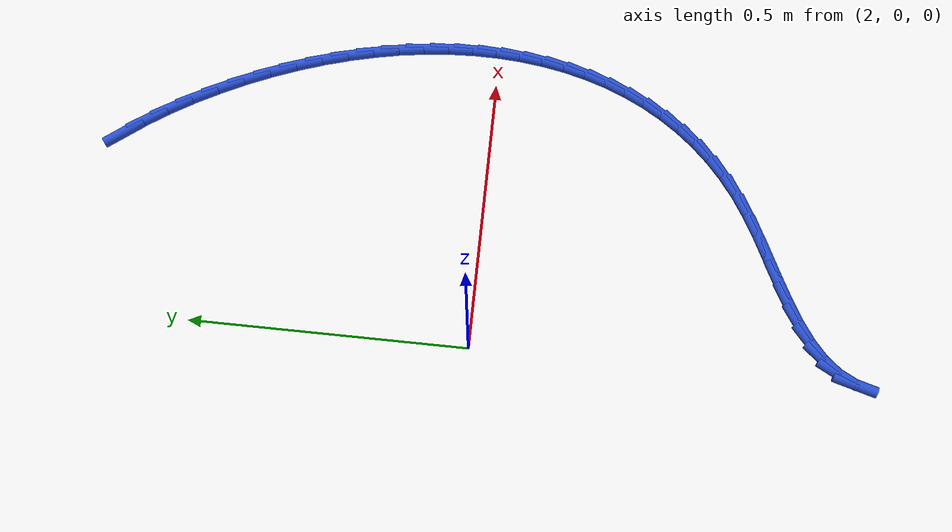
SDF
<sdf version="1.6">
 <world name="default">
  <model name="ground_plane">
   <static>1</static>
   <link name="link">
    <collision name="collision">
     <geometry><plane><normal>0 0 1</normal><size>100 100</size></plane></geometry>
     <surface><friction><ode><mu>100</mu><mu2>50</mu2></ode></friction></surface>
    </collision>
    <visual name="visual">
     <cast_shadows>0</cast_shadows>
     <geometry><plane><normal>0 0 1</normal><size>100 100</size></plane></geometry>
     <material>
      <script><uri>file://media/materials/scripts/gazebo.material</uri><name>Gazebo/WhiteGlow</name></script>
     </material>
    </visual>
   </link>
  </model>
  <model name="line">
   <link name="link_96">
    <pose>2.3361425243987157 0.670940411305497 0.01 0 1.57 -0.9211619495885262</pose>
    <collision name="collision">
     <geometry><cylinder><radius>0.01</radius><length>0.08</length></cylinder></geometry>
    </collision>
    <visual name="visual">
     <material>
      <script><name>Gazebo/Blue</name><uri>file://media/materials/scripts/gazebo.material</uri></script>
     </material>
     <geometry><cylinder><radius>0.01</radius><length>0.08</length></cylinder></geometry>
    </visual>
   </link>
   <link name="link_97">
    <pose>2.3655294639265647 0.6322544314807376 0.01 0 1.57 -0.979559157148753</pose>
    <collision name="collision">
     <geometry><cylinder><radius>0.01</radius><length>0.08</length></cylinder></geometry>
    </collision>
    <visual name="visual">
     <material>
      <script><name>Gazebo/Blue</name><uri>file://media/materials/scripts/gazebo.material</uri></script>
     </material>
     <geometry><cylinder><radius>0.01</radius><length>0.08</length></cylinder></geometry>
    </visual>
   </link>
   <link name="link_98">
    <pose>2.3932420598584727 0.5909754561784096 0.01 0 1.57 -1.0311458604146049</pose>
    <collision name="collision">
     <geometry><cylinder><radius>0.01</radius><length>0.08</length></cylinder></geometry>
    </collision>
    <visual name="visual">
     <material>
      <script><name>Gazebo/Blue</name><uri>file://media/materials/scripts/gazebo.material</uri></script>
     </material>
     <geometry><cylinder><radius>0.01</radius><length>0.08</length></cylinder></geometry>
    </visual>
   </link>
   <link name="link_99">
    <pose>2.4191576964260895 0.5477073408028895 0.01 0 1.57 -1.0776900004608259</pose>
    <collision name="collision">
     <geometry><cylinder><radius>0.01</radius><length>0.08</length></cylinder></geometry>
    </collision>
    <visual name="visual">
     <material>
      <script><name>Gazebo/Blue</name><uri>file://media/materials/scripts/gazebo.material</uri></script>
     </material>
     <geometry><cylinder><radius>0.01</radius><length>0.08</length></cylinder></geometry>
    </visual>
   </link>
   <link name="link_100">
    <pose>2.443153757861064 0.5030539407585554 0.01 0 1.57 -1.1207012633661388</pose>
    <collision name="collision">
     <geometry><cylinder><radius>0.01</radius><length>0.08</length></cylinder></geometry>
    </collision>
    <visual name="visual">
     <material>
      <script><name>Gazebo/Blue</name><uri>file://media/materials/scripts/gazebo.material</uri></script>
     </material>
     <geometry><cylinder><radius>0.01</radius><length>0.08</length></cylinder></geometry>
    </visual>
   </link>
   <link name="link_101">
    <pose>2.4651083271218623 0.4576155567696656 0.01 0 1.57 -1.162315428003696</pose>
    <collision name="collision">
     <geometry><cylinder><radius>0.01</radius><length>0.08</length></cylinder></geometry>
    </collision>
    <visual name="visual">
     <material>
      <script><name>Gazebo/Blue</name><uri>file://media/materials/scripts/gazebo.material</uri></script>
     </material>
     <geometry><cylinder><radius>0.01</radius><length>0.08</length></cylinder></geometry>
    </visual>
   </link>
   <link name="link_102">
    <pose>2.484936340176211 0.41180500475739107 0.01 0 1.57 -1.2043689217303548</pose>
    <collision name="collision">
     <geometry><cylinder><radius>0.01</radius><length>0.08</length></cylinder></geometry>
    </collision>
    <visual name="visual">
     <material>
      <script><name>Gazebo/Blue</name><uri>file://media/materials/scripts/gazebo.material</uri></script>
     </material>
     <geometry><cylinder><radius>0.01</radius><length>0.08</length></cylinder></geometry>
    </visual>
   </link>
   <link name="link_103">
    <pose>2.5026071159717476 0.3657584344361468 0.01 0 1.57 -1.2471430448267442</pose>
    <collision name="collision">
     <geometry><cylinder><radius>0.01</radius><length>0.08</length></cylinder></geometry>
    </collision>
    <visual name="visual">
     <material>
      <script><name>Gazebo/Blue</name><uri>file://media/materials/scripts/gazebo.material</uri></script>
     </material>
     <geometry><cylinder><radius>0.01</radius><length>0.08</length></cylinder></geometry>
    </visual>
   </link>
   <link name="link_104">
    <pose>2.5180943454410354 0.3195897536261521 0.01 0 1.57 -1.2908160991901476</pose>
    <collision name="collision">
     <geometry><cylinder><radius>0.01</radius><length>0.08</length></cylinder></geometry>
    </collision>
    <visual name="visual">
     <material>
      <script><name>Gazebo/Blue</name><uri>file://media/materials/scripts/gazebo.material</uri></script>
     </material>
     <geometry><cylinder><radius>0.01</radius><length>0.08</length></cylinder></geometry>
    </visual>
   </link>
   <link name="link_105">
    <pose>2.531371719516638 0.27341287014762417 0.01 0 1.57 -1.335577143184919</pose>
    <collision name="collision">
     <geometry><cylinder><radius>0.01</radius><length>0.08</length></cylinder></geometry>
    </collision>
    <visual name="visual">
     <material>
      <script><name>Gazebo/Blue</name><uri>file://media/materials/scripts/gazebo.material</uri></script>
     </material>
     <geometry><cylinder><radius>0.01</radius><length>0.08</length></cylinder></geometry>
    </visual>
   </link>
   <link name="link_106">
    <pose>2.542412929131118 0.22734169182078243 0.01 0 1.57 -1.3816257251251525</pose>
    <collision name="collision">
     <geometry><cylinder><radius>0.01</radius><length>0.08</length></cylinder></geometry>
    </collision>
    <visual name="visual">
     <material>
      <script><name>Gazebo/Blue</name><uri>file://media/materials/scripts/gazebo.material</uri></script>
     </material>
     <geometry><cylinder><radius>0.01</radius><length>0.08</length></cylinder></geometry>
    </visual>
   </link>
   <link name="link_107">
    <pose>2.5511916652170386 0.18149012646584428 0.01 0 1.57 -1.4291710830490594</pose>
    <collision name="collision">
     <geometry><cylinder><radius>0.01</radius><length>0.08</length></cylinder></geometry>
    </collision>
    <visual name="visual">
     <material>
      <script><name>Gazebo/Blue</name><uri>file://media/materials/scripts/gazebo.material</uri></script>
     </material>
     <geometry><cylinder><radius>0.01</radius><length>0.08</length></cylinder></geometry>
    </visual>
   </link>
   <link name="link_108">
    <pose>2.557681618706964 0.1359720819030276 0.01 0 1.57 -1.4784305479637547</pose>
    <collision name="collision">
     <geometry><cylinder><radius>0.01</radius><length>0.08</length></cylinder></geometry>
    </collision>
    <visual name="visual">
     <material>
      <script><name>Gazebo/Blue</name><uri>file://media/materials/scripts/gazebo.material</uri></script>
     </material>
     <geometry><cylinder><radius>0.01</radius><length>0.08</length></cylinder></geometry>
    </visual>
   </link>
   <link name="link_109">
    <pose>2.5618564805334563 0.09090146595255165 0.01 0 1.57 -1.529626819297249</pose>
    <collision name="collision">
     <geometry><cylinder><radius>0.01</radius><length>0.08</length></cylinder></geometry>
    </collision>
    <visual name="visual">
     <material>
      <script><name>Gazebo/Blue</name><uri>file://media/materials/scripts/gazebo.material</uri></script>
     </material>
     <geometry><cylinder><radius>0.01</radius><length>0.08</length></cylinder></geometry>
    </visual>
   </link>
   <link name="link_110">
    <pose>2.563689941629079 0.04639218643463344 0.01 0 1.57 1.558608942080746</pose>
    <collision name="collision">
     <geometry><cylinder><radius>0.01</radius><length>0.08</length></cylinder></geometry>
    </collision>
    <visual name="visual">
     <material>
      <script><name>Gazebo/Blue</name><uri>file://media/materials/scripts/gazebo.material</uri></script>
     </material>
     <geometry><cylinder><radius>0.01</radius><length>0.08</length></cylinder></geometry>
    </visual>
   </link>
   <link name="link_111">
    <pose>2.563155692926396 0.002558151169492543 0.01 0 1.57 1.5028727394270192</pose>
    <collision name="collision">
     <geometry><cylinder><radius>0.01</radius><length>0.08</length></cylinder></geometry>
    </collision>
    <visual name="visual">
     <material>
      <script><name>Gazebo/Blue</name><uri>file://media/materials/scripts/gazebo.material</uri></script>
     </material>
     <geometry><cylinder><radius>0.01</radius><length>0.08</length></cylinder></geometry>
    </visual>
   </link>
   <link name="link_112">
    <pose>2.560227425357969 -0.040486732022654126 0.01 0 1.57 1.444552363742111</pose>
    <collision name="collision">
     <geometry><cylinder><radius>0.01</radius><length>0.08</length></cylinder></geometry>
    </collision>
    <visual name="visual">
     <material>
      <script><name>Gazebo/Blue</name><uri>file://media/materials/scripts/gazebo.material</uri></script>
     </material>
     <geometry><cylinder><radius>0.01</radius><length>0.08</length></cylinder></geometry>
    </visual>
   </link>
   <link name="link_113">
    <pose>2.5548788298563636 -0.08262855532158717 0.01 0 1.57 1.383468358586358</pose>
    <collision name="collision">
     <geometry><cylinder><radius>0.01</radius><length>0.08</length></cylinder></geometry>
    </collision>
    <visual name="visual">
     <material>
      <script><name>Gazebo/Blue</name><uri>file://media/materials/scripts/gazebo.material</uri></script>
     </material>
     <geometry><cylinder><radius>0.01</radius><length>0.08</length></cylinder></geometry>
    </visual>
   </link>
   <link name="link_114">
    <pose>2.5470835973541415 -0.12375341090708938 0.01 0 1.57 1.3194813512771422</pose>
    <collision name="collision">
     <geometry><cylinder><radius>0.01</radius><length>0.08</length></cylinder></geometry>
    </collision>
    <visual name="visual">
     <material>
      <script><name>Gazebo/Blue</name><uri>file://media/materials/scripts/gazebo.material</uri></script>
     </material>
     <geometry><cylinder><radius>0.01</radius><length>0.08</length></cylinder></geometry>
    </visual>
   </link>
   <link name="link_115">
    <pose>2.5368154187838665 -0.16374739095894164 0.01 0 1.57 1.2525096619528135</pose>
    <collision name="collision">
     <geometry><cylinder><radius>0.01</radius><length>0.08</length></cylinder></geometry>
    </collision>
    <visual name="visual">
     <material>
      <script><name>Gazebo/Blue</name><uri>file://media/materials/scripts/gazebo.material</uri></script>
     </material>
     <geometry><cylinder><radius>0.01</radius><length>0.08</length></cylinder></geometry>
    </visual>
   </link>
   <link name="link_116">
    <pose>2.5240479850781004 -0.20249658765692607 0.01 0 1.57 1.1825490455274297</pose>
    <collision name="collision">
     <geometry><cylinder><radius>0.01</radius><length>0.08</length></cylinder></geometry>
    </collision>
    <visual name="visual">
     <material>
      <script><name>Gazebo/Blue</name><uri>file://media/materials/scripts/gazebo.material</uri></script>
     </material>
     <geometry><cylinder><radius>0.01</radius><length>0.08</length></cylinder></geometry>
    </visual>
   </link>
   <link name="link_117">
    <pose>2.508754987169408 -0.23988709318082557 0.01 0 1.57 1.1096928964110275</pose>
    <collision name="collision">
     <geometry><cylinder><radius>0.01</radius><length>0.08</length></cylinder></geometry>
    </collision>
    <visual name="visual">
     <material>
      <script><name>Gazebo/Blue</name><uri>file://media/materials/scripts/gazebo.material</uri></script>
     </material>
     <geometry><cylinder><radius>0.01</radius><length>0.08</length></cylinder></geometry>
    </visual>
   </link>
   <link name="link_118">
    <pose>2.490910115990352 -0.27580499971041983 0.01 0 1.57 1.0341502429264238</pose>
    <collision name="collision">
     <geometry><cylinder><radius>0.01</radius><length>0.08</length></cylinder></geometry>
    </collision>
    <visual name="visual">
     <material>
      <script><name>Gazebo/Blue</name><uri>file://media/materials/scripts/gazebo.material</uri></script>
     </material>
     <geometry><cylinder><radius>0.01</radius><length>0.08</length></cylinder></geometry>
    </visual>
   </link>
   <link name="link_119">
    <pose>2.470487062473496 -0.3101363994254918 0.01 0 1.57 0.9562579839576453</pose>
    <collision name="collision">
     <geometry><cylinder><radius>0.01</radius><length>0.08</length></cylinder></geometry>
    </collision>
    <visual name="visual">
     <material>
      <script><name>Gazebo/Blue</name><uri>file://media/materials/scripts/gazebo.material</uri></script>
     </material>
     <geometry><cylinder><radius>0.01</radius><length>0.08</length></cylinder></geometry>
    </visual>
   </link>
   <link name="link_120">
    <pose>2.4474595175514025 -0.3427673845058231 0.01 0 1.57 0.8764834793342126</pose>
    <collision name="collision">
     <geometry><cylinder><radius>0.01</radius><length>0.08</length></cylinder></geometry>
    </collision>
    <visual name="visual">
     <material>
      <script><name>Gazebo/Blue</name><uri>file://media/materials/scripts/gazebo.material</uri></script>
     </material>
     <geometry><cylinder><radius>0.01</radius><length>0.08</length></cylinder></geometry>
    </visual>
   </link>
   <link name="link_121">
    <pose>2.4218011721566355 -0.37358404713119564 0.01 0 1.57 0.7954142354109576</pose>
    <collision name="collision">
     <geometry><cylinder><radius>0.01</radius><length>0.08</length></cylinder></geometry>
    </collision>
    <visual name="visual">
     <material>
      <script><name>Gazebo/Blue</name><uri>file://media/materials/scripts/gazebo.material</uri></script>
     </material>
     <geometry><cylinder><radius>0.01</radius><length>0.08</length></cylinder></geometry>
    </visual>
   </link>
   <link name="link_122">
    <pose>2.3934857172217567 -0.4024724794813917 0.01 0 1.57 0.7137332691230394</pose>
    <collision name="collision">
     <geometry><cylinder><radius>0.01</radius><length>0.08</length></cylinder></geometry>
    </collision>
    <visual name="visual">
     <material>
      <script><name>Gazebo/Blue</name><uri>file://media/materials/scripts/gazebo.material</uri></script>
     </material>
     <geometry><cylinder><radius>0.01</radius><length>0.08</length></cylinder></geometry>
    </visual>
   </link>
   <link name="link_123">
    <pose>2.3624868436793323 -0.42931877373619187 0.01 0 1.57 0.632181573141038</pose>
    <collision name="collision">
     <geometry><cylinder><radius>0.01</radius><length>0.08</length></cylinder></geometry>
    </collision>
    <visual name="visual">
     <material>
      <script><name>Gazebo/Blue</name><uri>file://media/materials/scripts/gazebo.material</uri></script>
     </material>
     <geometry><cylinder><radius>0.01</radius><length>0.08</length></cylinder></geometry>
    </visual>
   </link>
   <link name="link_124">
    <pose>2.3287782424619223 -0.45400902207537824 0.01 0 1.57 0.5530252072908484</pose>
    <collision name="collision">
     <geometry><cylinder><radius>0.01</radius><length>0.08</length></cylinder></geometry>
    </collision>
    <visual name="visual">
     <material>
      <script><name>Gazebo/Blue</name><uri>file://media/materials/scripts/gazebo.material</uri></script>
     </material>
     <geometry><cylinder><radius>0.01</radius><length>0.08</length></cylinder></geometry>
    </visual>
   </link>
   <link name="link_125">
    <pose>2.292390389931441 -0.4764703460197853 0.01 0 1.57 0.49276225390242195</pose>
    <collision name="collision">
     <geometry><cylinder><radius>0.01</radius><length>0.08</length></cylinder></geometry>
    </collision>
    <visual name="visual">
     <material>
      <script><name>Gazebo/Blue</name><uri>file://media/materials/scripts/gazebo.material</uri></script>
     </material>
     <geometry><cylinder><radius>0.01</radius><length>0.08</length></cylinder></geometry>
    </visual>
   </link>
   <link name="link_126">
    <pose>2.253989634675347 -0.4970893056945972 0.01 0 1.57 0.45910961285800944</pose>
    <collision name="collision">
     <geometry><cylinder><radius>0.01</radius><length>0.08</length></cylinder></geometry>
    </collision>
    <visual name="visual">
     <material>
      <script><name>Gazebo/Blue</name><uri>file://media/materials/scripts/gazebo.material</uri></script>
     </material>
     <geometry><cylinder><radius>0.01</radius><length>0.08</length></cylinder></geometry>
    </visual>
   </link>
   <link name="link_127">
    <pose>2.2146413328572114 -0.5165407573268348 0.01 0 1.57 0.45032535370190413</pose>
    <collision name="collision">
     <geometry><cylinder><radius>0.01</radius><length>0.08</length></cylinder></geometry>
    </collision>
    <visual name="visual">
     <material>
      <script><name>Gazebo/Blue</name><uri>file://media/materials/scripts/gazebo.material</uri></script>
     </material>
     <geometry><cylinder><radius>0.01</radius><length>0.08</length></cylinder></geometry>
    </visual>
   </link>
   <link name="link_128">
    <pose>2.175417003851084 -0.5355040102658749 0.01 0 1.57 0.4665872537376018</pose>
    <collision name="collision">
     <geometry><cylinder><radius>0.01</radius><length>0.08</length></cylinder></geometry>
    </collision>
    <visual name="visual">
     <material>
      <script><name>Gazebo/Blue</name><uri>file://media/materials/scripts/gazebo.material</uri></script>
     </material>
     <geometry><cylinder><radius>0.01</radius><length>0.08</length></cylinder></geometry>
    </visual>
   </link>
   <link name="link_129">
    <pose>2.137388167031012 -0.5546583738610928 0.01 0 1.57 0.5104491837103213</pose>
    <collision name="collision">
     <geometry><cylinder><radius>0.01</radius><length>0.08</length></cylinder></geometry>
    </collision>
    <visual name="visual">
     <material>
      <script><name>Gazebo/Blue</name><uri>file://media/materials/scripts/gazebo.material</uri></script>
     </material>
     <geometry><cylinder><radius>0.01</radius><length>0.08</length></cylinder></geometry>
    </visual>
   </link>
   <link name="link_130">
    <pose>2.1016263417710506 -0.5746831574618659 0.01 0 1.57 0.5871262988249593</pose>
    <collision name="collision">
     <geometry><cylinder><radius>0.01</radius><length>0.08</length></cylinder></geometry>
    </collision>
    <visual name="visual">
     <material>
      <script><name>Gazebo/Blue</name><uri>file://media/materials/scripts/gazebo.material</uri></script>
     </material>
     <geometry><cylinder><radius>0.01</radius><length>0.08</length></cylinder></geometry>
    </visual>
   </link>
   <link name="link_131">
    <pose>2.069203047445245 -0.5962576704175697 0.01 0 1.57 0.704334347107414</pose>
    <collision name="collision">
     <geometry><cylinder><radius>0.01</radius><length>0.08</length></cylinder></geometry>
    </collision>
    <visual name="visual">
     <material>
      <script><name>Gazebo/Blue</name><uri>file://media/materials/scripts/gazebo.material</uri></script>
     </material>
     <geometry><cylinder><radius>0.01</radius><length>0.08</length></cylinder></geometry>
    </visual>
   </link>
   <link name="link_132">
    <pose>2.04118980342765 -0.6200612220775801 0.01 0 1.57 0.8700838835247324</pose>
    <collision name="collision">
     <geometry><cylinder><radius>0.01</radius><length>0.08</length></cylinder></geometry>
    </collision>
    <visual name="visual">
     <material>
      <script><name>Gazebo/Blue</name><uri>file://media/materials/scripts/gazebo.material</uri></script>
     </material>
     <geometry><cylinder><radius>0.01</radius><length>0.08</length></cylinder></geometry>
    </visual>
   </link>
   <link name="link_133">
    <pose>2.0186581290923145 -0.6467731217912733 0.01 0 1.57 1.0841266249468795</pose>
    <collision name="collision">
     <geometry><cylinder><radius>0.01</radius><length>0.08</length></cylinder></geometry>
    </collision>
    <visual name="visual">
     <material>
      <script><name>Gazebo/Blue</name><uri>file://media/materials/scripts/gazebo.material</uri></script>
     </material>
     <geometry><cylinder><radius>0.01</radius><length>0.08</length></cylinder></geometry>
    </visual>
   </link>
   <link name="link_134">
    <pose>2.0026382168356553 -0.6770497597401437 0.01 0 1.57 1.2962615940494784</pose>
    <collision name="collision">
     <geometry><cylinder><radius>0.01</radius><length>0.08</length></cylinder></geometry>
    </collision>
    <visual name="visual">
     <material>
      <script><name>Gazebo/Blue</name><uri>file://media/materials/scripts/gazebo.material</uri></script>
     </material>
     <geometry><cylinder><radius>0.01</radius><length>0.08</length></cylinder></geometry>
    </visual>
   </link>
  </model>
 </world>
</sdf>
